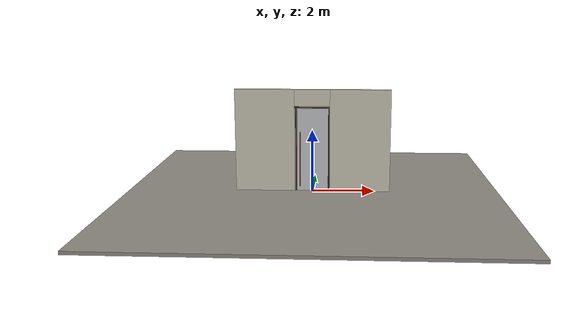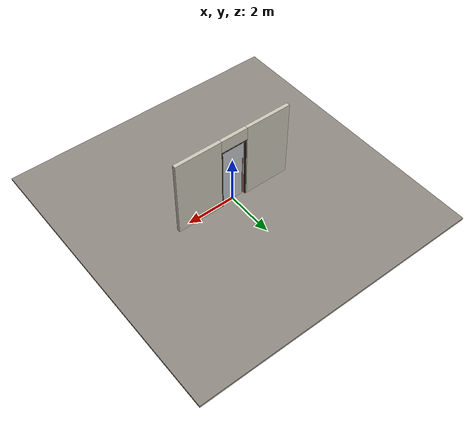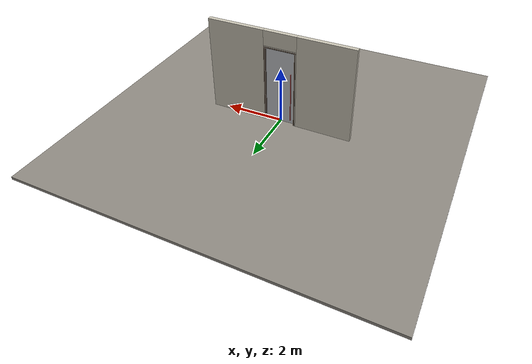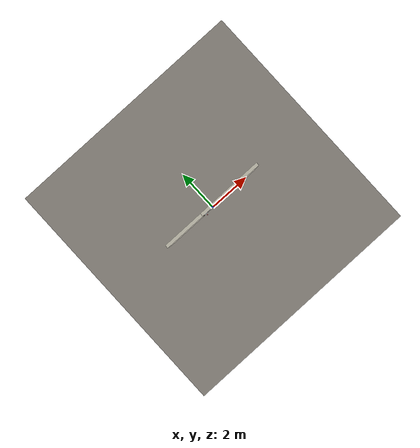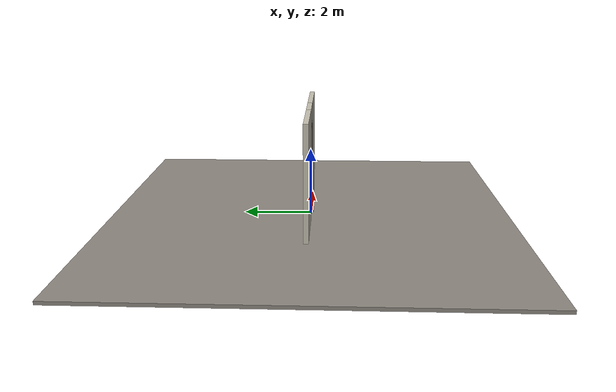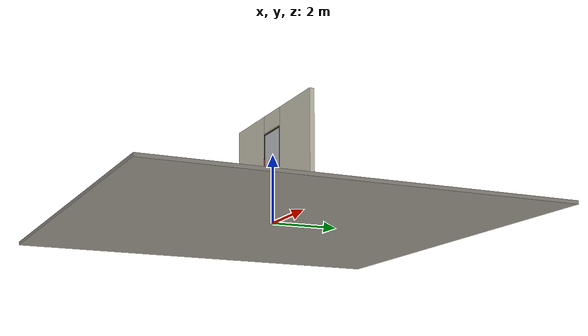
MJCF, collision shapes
<?xml version="1.0" ?>
<mujoco model="db0591_pivot_minimal">
  <compiler angle="radian" meshdir="../../hardware" texturedir="../../textures" autolimits="true" inertiafromgeom="false"/>
  <option timestep="0.002" integrator="implicitfast" cone="elliptic" impratio="10" noslip_iterations="3">
    <flag multiccd="enable"/>
  </option>
  <size memory="16M"/>
  <default>
    <geom condim="4" solref="0.005 1" solimp="0.95 0.99 0.001"/>
    <joint solreflimit="0.005 1" solimplimit="0.95 0.99 0.001"/>
    <tendon solreflimit="0.005 1"/>
    <equality solref="0.002 1"/>
  </default>
  <visual>
    <headlight ambient="0.4 0.4 0.4" diffuse="0.7 0.7 0.7" specular="0.2 0.2 0.2"/>
    <quality shadowsize="4096"/>
    <map znear="0.01" zfar="60"/>
  </visual>
  <asset>
    <mesh name="pull_897e207f65" file="pull_897e207f65.obj"/>
    <material name="mat_floor" rgba="0.55 0.53 0.5 1" specular="0.2" shininess="0.15" reflectance="0"/>
    <material name="mat_wall" rgba="0.78 0.76 0.7 1" specular="0.2" shininess="0.1" reflectance="0"/>
    <material name="mat_leaf" rgba="0.75 0.76 0.77 1" specular="0.8" shininess="0.65" reflectance="0.4"/>
    <material name="mat_hinge" rgba="0.65 0.66 0.68 1" specular="0.74" shininess="0.5" reflectance="0.36"/>
    <material name="mat_op_stainless" rgba="0.75 0.76 0.77 1" specular="0.8" shininess="0.65" reflectance="0.4"/>
    <material name="mat_maglock" rgba="0.22 0.17 0.13 1" specular="0.8" shininess="0.6" reflectance="0.4"/>
    <material name="mat_frame" rgba="0.22 0.17 0.13 1" specular="0.8" shininess="0.6" reflectance="0.4"/>
    <material name="mat_closer" rgba="0.75 0.76 0.77 1" specular="0.8" shininess="0.65" reflectance="0.4"/>
    <material name="mat_stop" rgba="0.9 0.9 0.92 1" specular="0.8" shininess="0.9" reflectance="0.4"/>
    <texture name="skybox" type="skybox" builtin="gradient" rgb1="0.6 0.7 0.85" rgb2="0.9 0.92 0.95" width="256" height="256"/>
  </asset>
  <worldbody>
    <light name="sun" pos="1.5 -2.5 4" dir="-0.3 0.5 -0.8" directional="true" diffuse="0.8 0.8 0.8" specular="0.3 0.3 0.3" castshadow="true"/>
    <light name="fill" pos="-1.5 2.5 3" dir="0.3 -0.5 -0.7" directional="true" diffuse="0.35 0.35 0.4" castshadow="false"/>
    <camera name="robot_view" pos="0 -3.1245 2.2429" xyaxes="1 0 0 0 0.26963 0.962964" fovy="52"/>
    <camera name="far_view" pos="0 3.2105 2.2429" xyaxes="-1 0 0 0 -0.26963 0.962964" fovy="52"/>
    <camera name="iso" pos="-2.4073 -2.6177 2.7497" xyaxes="0.741536 -0.670913 0 0.242917 0.268487 0.932151" fovy="46"/>
    <camera name="detail_handle" pos="-0.215 -0.8875 1.33" xyaxes="0.97561 0.219512 0 -0.070934 0.315262 0.94635" fovy="38"/>
    <geom name="floor" type="box" size="6 6 0.05" pos="0 0 -0.05" material="mat_floor" group="0" contype="1" conaffinity="1" friction="0.8 0.005 0.0001" density="2400"/>
    <geom name="wall_left" type="box" size="0.9595 0.0725 1.656" pos="-1.5405 0.043 1.656" material="mat_wall" group="0" contype="1" conaffinity="1" friction="0.6 0.005 0.0001" density="800"/>
    <geom name="wall_right" type="box" size="0.9745 0.0725 1.656" pos="1.5255 0.043 1.656" material="mat_wall" group="0" contype="1" conaffinity="1" friction="0.6 0.005 0.0001" density="800"/>
    <geom name="wall_header" type="box" size="0.566 0.0725 0.2625" pos="-0.015 0.043 3.0495" material="mat_wall" group="0" contype="1" conaffinity="1" friction="0.6 0.005 0.0001" density="800"/>
    <geom name="jamb_hinge" type="box" size="0.0225 0.0725 1.356" pos="0.5285 0.043 1.356" material="mat_frame" group="0" contype="1" conaffinity="1" friction="0.6 0.005 0.0001" density="300"/>
    <geom name="jamb_strike" type="box" size="0.0225 0.0725 1.356" pos="-0.5285 0.043 1.356" material="mat_frame" group="0" contype="1" conaffinity="1" friction="0.6 0.005 0.0001" density="300"/>
    <geom name="stud_strike" type="box" size="0.015 0.0725 1.356" pos="-0.566 0.043 1.356" material="mat_wall" group="0" contype="1" conaffinity="1" friction="0.6 0.005 0.0001" density="500"/>
    <geom name="jamb_head" type="box" size="0.566 0.0725 0.0225" pos="-0.015 0.043 2.7345" material="mat_frame" group="0" contype="1" conaffinity="1" friction="0.6 0.005 0.0001" density="300"/>
    <geom name="head_stud" type="box" size="0.566 0.0725 0.015" pos="-0.015 0.043 2.772" material="mat_wall" group="0" contype="1" conaffinity="1" friction="0.6 0.005 0.0001" density="500"/>
    <site name="approach_point" pos="0 -1.5 0" quat="1 0 0 0" size="0.05" rgba="0.2 0.9 0.2 0.5" group="4"/>
    <site name="goal_point" pos="0 1.5 0" quat="1 0 0 0" size="0.05" rgba="0.2 0.9 0.2 0.5" group="4"/>
    <site name="door_plane_center" pos="0 0 1.356" quat="1 0 0 0" size="0.02" rgba="0.2 0.9 0.2 0.5" group="4"/>
    <body name="leaf" pos="0.506 0 0">
      <inertial pos="-0.594746 0 1.2888" mass="78.21724" quat="-0.488277 -0.488277 -0.511454 0.511454" diaginertia="7.242343142 43.050553067 50.016096617"/>
      <joint name="leaf_hinge" type="hinge" axis="0 0 1" pos="-0.2 0 0" limited="true" range="0 1.570796" damping="8.48762" frictionloss="0.971596" stiffness="14.183889" springref="-2.144687" armature="0.02"/>
      <geom name="leaf_slab" type="box" size="0.5 0.0225 1.35" pos="-0.506 0 1.358" material="mat_leaf" group="0" contype="1" conaffinity="1" friction="0.35 0.005 0.0001" density="1"/>
      <geom name="leaf_pull_n" type="mesh" mesh="pull_897e207f65" pos="-0.901 -0.0225 1.05" quat="0 0 -0.707107 0.707107" material="mat_op_stainless" group="1" contype="0" conaffinity="0" density="3000"/>
      <geom name="leaf_pull_col_n" type="capsule" size="0.016 0.88" pos="-0.901 -0.0875 1.05" material="mat_op_stainless" group="3" contype="1" conaffinity="1" rgba="0.8 0.3 0.3 0.25" friction="0.7 0.01 0.0001" density="3000"/>
      <geom name="leaf_pull_p" type="mesh" mesh="pull_897e207f65" pos="-0.901 0.0225 1.05" quat="0 0 0.707107 0.707107" material="mat_op_stainless" group="1" contype="0" conaffinity="0" density="3000"/>
      <geom name="leaf_pull_col_p" type="capsule" size="0.016 0.88" pos="-0.901 0.0875 1.05" material="mat_op_stainless" group="3" contype="1" conaffinity="1" rgba="0.8 0.3 0.3 0.25" friction="0.7 0.01 0.0001" density="3000"/>
      <site name="leaf_pull_grip_n" pos="-0.901 -0.0875 1.05" quat="1 0 0 0" size="0.012" rgba="0.2 0.9 0.2 0.5" group="4"/>
      <site name="leaf_pull_grip_p" pos="-0.901 0.0875 1.05" quat="1 0 0 0" size="0.012" rgba="0.2 0.9 0.2 0.5" group="4"/>
      <site name="leaf_edge_mid" pos="-1.006 0 1.35" quat="1 0 0 0" size="0.02" rgba="0.2 0.9 0.2 0.5" group="4"/>
    </body>
  </worldbody>
  <equality>
    <weld name="leaf_maglock" body1="leaf" body2="world" active="true"/>
  </equality>
  <sensor>
    <jointpos name="leaf_hinge_pos" joint="leaf_hinge"/>
    <jointvel name="leaf_hinge_vel" joint="leaf_hinge"/>
  </sensor>
</mujoco>
